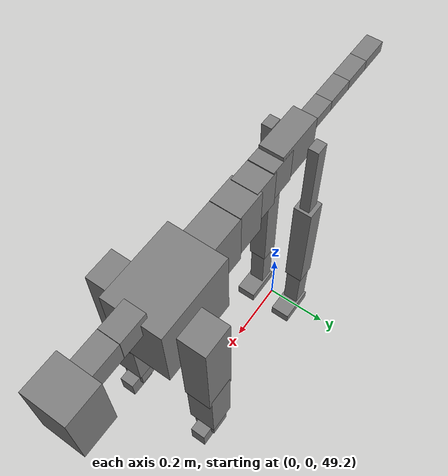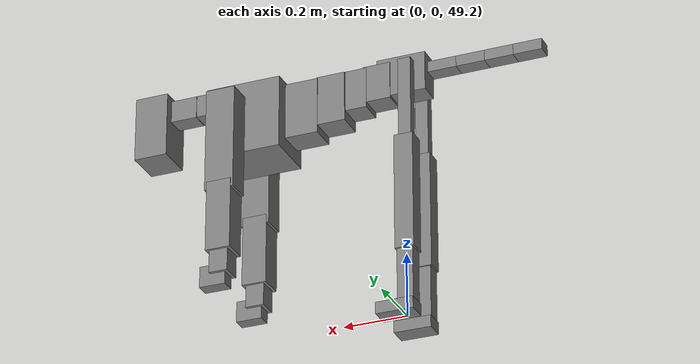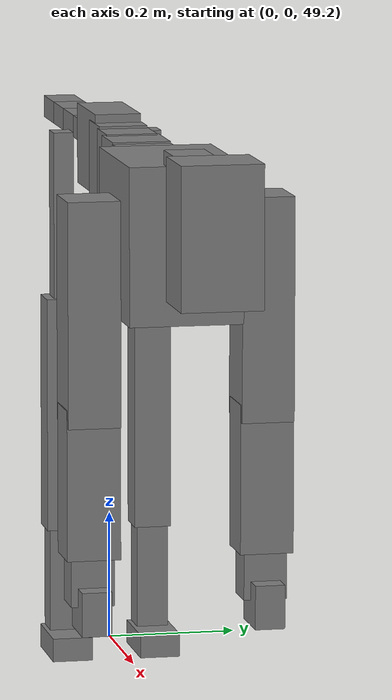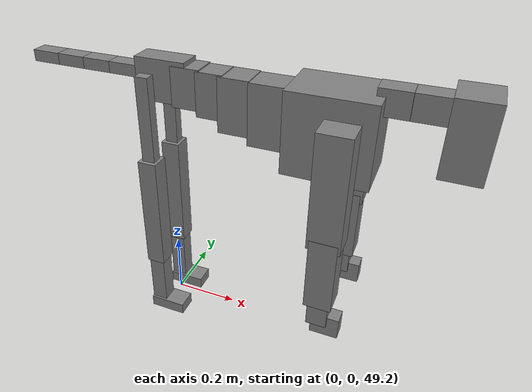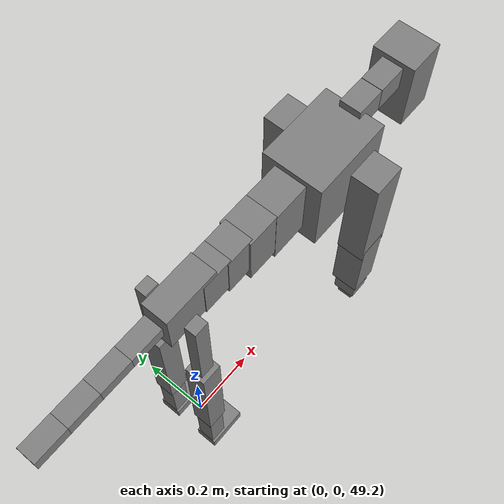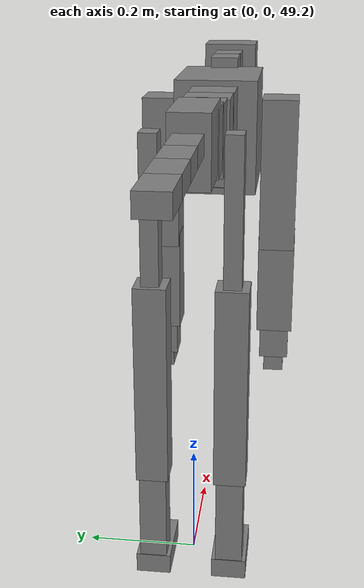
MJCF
<mujoco model="dog">

    <default>
        <joint armature="0.02" stiffness="1" damping="0.2" limited="true"/>
        <geom condim="3" friction="1 0.05 0.05" margin="0.01"/>
        <motor ctrllimited="true" ctrlrange="-1.0 1.0" forcelimited="true" gear="50"/>
    </default>

    <compiler inertiafromgeom="true" angle="radian"/>

    <option timestep="0.016" iterations="50" tolerance="1e-10" solver="Newton" jacobian="dense" cone="pyramidal"/>

    <size nconmax="20000" njmax="60000" nstack="5000000"/>
    <visual>
        <map force="0.1" zfar="30"/>
        <rgba haze="0.15 0.25 0.35 1"/>
        <quality shadowsize="2048"/>
        <global offwidth="800" offheight="800"/>
    </visual>

    <asset>
        <texture type="skybox" builtin="gradient" rgb1="0.3 0.5 0.7" rgb2="0 0 0" width="512" height="512"/>
        <texture name="texplane" type="2d" builtin="checker" rgb1=".2 .3 .4" rgb2=".1 0.15 0.2" width="512" height="512"
                 mark="cross" markrgb=".8 .8 .8"/>
        <texture name="texgeom" type="cube" builtin="flat" mark="cross" width="127" height="1278" rgb1="0.8 0.6 0.4"
                 rgb2="0.8 0.6 0.4" markrgb="1 1 1" random="0.01"/>

        <material name="matplane" reflectance="0.3" texture="texplane" texrepeat="1 1" texuniform="true"/>
        <material name="matgeom" texture="texgeom" texuniform="true" rgba="0.8 0.6 .4 1"/>
    </asset>

    <worldbody>
        <geom name="floor" pos="0 0 0" size="0 0 .25" type="plane" material="matplane" condim="3"/>

        <light directional="false" diffuse=".2 .2 .2" specular="0 0 0" pos="0 0 5" dir="0 0 -1" castshadow="false"/>
        <light mode="targetbodycom" target="torso" directional="false" diffuse=".8 .8 .8" specular="0.3 0.3 0.3"
               pos="0 0 4.0" dir="0 0 -1"/>

        <body name="root" pos="0 0 50">
            <freejoint name="root_1"/>
            <geom type="box" pos="0 0 -0.02" size="0.0774  0.0358  0.063" density="2030"/>

            <body name="spine1" pos="0.054 0 0">
                <joint name="spine1_y" axis="0 1 0" range="0 0.7" limited="true"/>
                <geom type="box" pos="0.02375 0 -0.03" size="0.04375  0.0375  0.05985" density="2030"/>

                <body name="spine2" pos="0.0612 0 0">
                    <joint name="spine2_y" axis="0 1 0" range="-0.15 0.15" limited="true"/>
                    <geom type="box" pos="0.03555  0  -0.04" size="0.04055  0.039  0.06615" density="2030"/>

                    <body name="spine3" pos="0.0730 0 0">
                        <joint name="spine3_y" axis="0 1 0" range="-0.15 0.15" limited="true"/>
                        <geom type="box" pos="0.03555  0  -0.057" size="0.04555  0.0445  0.081" density="2030"/>

                        <body name="spine4" pos="0.0780 0 0">
                            <joint name="spine4_y" axis="0 1 0" range="-0.15 0.15" limited="true"/>
                            <geom type="box" pos="0.05265  0  -0.07" size="0.05265  0.045  0.09135" density="2030"/>

                            <body name="torso" pos="0.1082 0 0">
                                <joint name="torso_y" axis="0 1 0" range="-0.15 0.15" limited="true"/>
                                <geom type="box" pos="0.11925  0  -0.085" size="0.11925  0.085  0.11745"
                                      density="2030"/>

                                <body name="neck1" pos="0.2160  0   0.0180">
                                    <joint name="neck1_y" axis="0 1 0" range="-1.2  -1" limited="true"/>
                                    <geom type="box" pos="0.0423  0  0" size="0.0423  0.03  0.036" density="2325"/>

                                    <body name="neck2" pos="0.0853  0  0">
                                        <joint name="neck2_y" axis="0 1 0" range="0.1  0" limited="true"/>
                                        <geom type="box" pos="0.0423  0  0" size="0.0423  0.03  0.036" density="2325"/>

                                        <body name="head" pos="0.0853  0  0">
                                            <joint name="head_y" axis="0 1 0" range="-0.3  -0.2" limited="true"/>
                                            <geom type="box" pos="0.0531  0  -0.055" size="0.0531  0.06  0.1044"
                                                  density="4030"/>

                                        </body>
                                    </body>
                                </body>

                                <body name="front_shoulder" pos="0.156  0   -0.0480">
                                    <joint name="front_shoulder_y" axis="0 1 0" range="-1 1.5" limited="true"/>
                                    <geom type="box" pos="0 0.13 -0.1411" size="0.0460  0.0393  0.1677" density="1158"/>
                                    <geom type="box" pos="0 -0.13 -0.1411" size="0.0460  0.0393  0.1677"
                                          density="1158"/>

                                    <body name="front_elbow" pos="0  0  -0.2822">
                                        <joint name="front_elbow_y" axis="0 1 0" range="-2 0" limited="true"/>
                                        <geom type="box" pos="0 0.13 -0.1126" size="0.0392  0.0401  0.1126"
                                              density="1081"/>
                                        <geom type="box" pos="0 -0.13 -0.1126" size="0.0392  0.0401  0.1126"
                                              density="1081"/>

                                        <body name="front_wrist" pos="0  0  -0.2253">
                                            <joint name="front_wrist_y" axis="0 1 0" range="-0.2 0" limited="true"/>
                                            <geom type="box" pos="0 0.13 -0.0289" size="0.0293  0.0325  0.0420"
                                                  density="1664"/>
                                            <geom type="box" pos="0 -0.13 -0.0289" size="0.0293  0.0325  0.0420"
                                                  density="1664"/>

                                            <body name="front_finger_end" pos="0  0  -0.0578">
                                                <joint name="front_finger_y" axis="0 1 0" range="-0.4 1"
                                                       limited="true"/>
                                                <geom type="box" pos="0.0224  0.13  -0.0181"
                                                      size="0.0410  0.0224  0.0331" density="1515"/>
                                                <geom type="box" pos="0.0224  -0.13  -0.0181"
                                                      size="0.0410  0.0224  0.0331" density="1515"/>

                                            </body>

                                        </body>
                                    </body>
                                </body>

                            </body>
                        </body>
                    </body>
                </body>
            </body>

            <body name="back_hip" pos="-0.03 0 -0.018">
                <joint name="back_hip_y" axis="0 1 0" range="-1.5 0.3" limited="true"/>
                <geom type="box" pos="0 0.07 -0.1271" size="0.0200  0.0157  0.1499" density="1154"/>
                <geom type="box" pos="0 -0.07 -0.1271" size="0.0200  0.0157  0.1499" density="1154"/>

                <body name="back_knee" pos="0  0  -0.2542">
                    <joint name="back_knee_y" axis="0 1 0" range="0 2.8" limited="true"/>
                    <geom type="box" pos="0 0.07 -0.1692" size="0.0293  0.0289  0.1847" density="1227"/>
                    <geom type="box" pos="0 -0.07 -0.1692" size="0.0293  0.0289  0.1847" density="1227"/>

                    <body name="back_ankle" pos="0  0  -0.3383">
                        <joint name="back_ankle_y" axis="0 1 0" range="-2.2 0" limited="true"/>
                        <geom type="box" pos="0 0.07 -0.0960" size="0.0246  0.0246  0.1072" density="1284"/>
                        <geom type="box" pos="0 -0.07 -0.0960" size="0.0246  0.0246  0.1072" density="1284"/>

                        <body name="back_toe_end" pos="0  0  -0.1920">
                            <joint name="back_toe_y" axis="0 1 0" range="-0.4 1" limited="true"/>
                            <geom type="box" pos="0.0315  0.07  -0.0034" size="0.0577  0.0315  0.0184" density="1515"/>
                            <geom type="box" pos="0.0315  -0.07  -0.0034" size="0.0577  0.0315  0.0184" density="1515"/>

                        </body>
                    </body>
                </body>
            </body>

            <body name="tail1" pos="-0.074 0 -0.006">
                <joint name="tail1_y" axis="0 1 0" range="-0.2 0.2" limited="true"/>
                <geom type="box" pos="-0.0536  0  0" size="0.045  0.025  0.0175" density="1587"/>

                <body name="tail2" pos="-0.09 0 0">
                    <joint name="tail2_y" axis="0 1 0" range="-0.2 0.2" limited="true"/>
                    <geom type="box" pos="-0.0536  0  0" size="0.045  0.025  0.0175" density="1587"/>

                    <body name="tail3" pos="-0.09 0 0">
                        <joint name="tail3_y" axis="0 1 0" range="-0.2 0.2" limited="true"/>
                        <geom type="box" pos="-0.0536  0  0" size="0.045  0.025  0.0175" density="1587"/>

                        <body name="tail4" pos="-0.09 0 0">
                            <joint name="tail4_y" axis="0 1 0" range="-0.2 0.2" limited="true"/>
                            <geom type="box" pos="-0.0536  0  0" size="0.045  0.025  0.0175" density="1587"/>

                        </body>
                    </body>
                </body>
            </body>
        </body>
    </worldbody>

    <actuator>
        <motor joint="spine1_y" forcerange="-150 150     "/>
        <motor joint="spine2_y" forcerange="-150 150     "/>
        <motor joint="spine3_y" forcerange="-150 150     "/>
        <motor joint="spine4_y" forcerange="-150 150     "/>
        <motor joint="torso_y" forcerange="-150 150     "/>
        <motor joint="neck1_y" forcerange="-100 100       "/>
        <motor joint="neck2_y" forcerange="-100 100       "/>
        <motor joint="head_y" forcerange="-150 150       "/>
        <motor joint="front_shoulder_y" forcerange="-177.14 185.13"/>
        <motor joint="front_elbow_y" forcerange="-195.90 195.56"/>
        <motor joint="front_wrist_y" forcerange="-146.85 113.20"/>
        <motor joint="front_finger_y" forcerange="-25.26 54.02"/>
        <motor joint="back_hip_y" forcerange="-200.90 208.61"/>
        <motor joint="back_knee_y" forcerange="-259.91 360.52"/>
        <motor joint="back_angle_y" forcerange="-157.85 135.45"/>
        <motor joint="back_toe_y" forcerange="-50.61 121.07"/>
        <motor joint="tail1_y" forcerange="-50 50     "/>
        <motor joint="tail2_y" forcerange="-50 50     "/>
        <motor joint="tail3_y" forcerange="-50 50     "/>
        <motor joint="tail4_y" forcerange="-50 50     "/>
    </actuator>
</mujoco>
